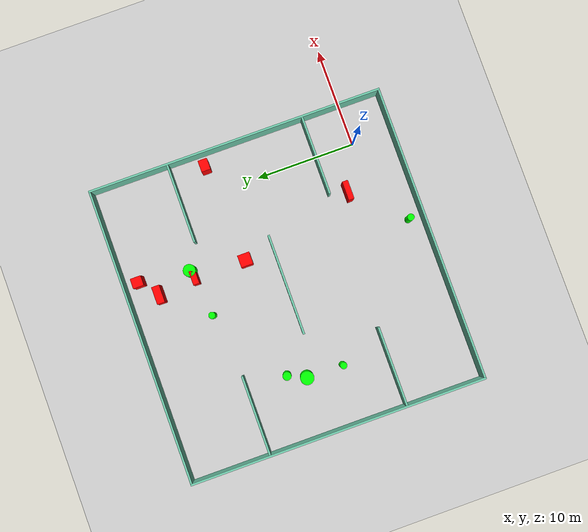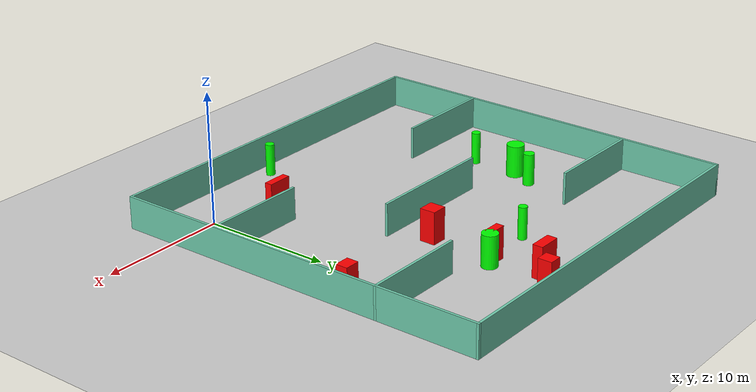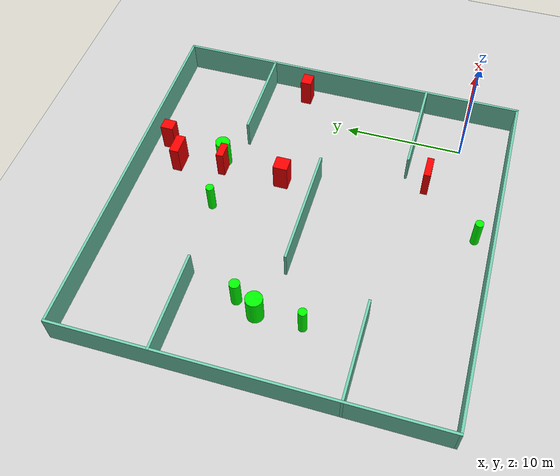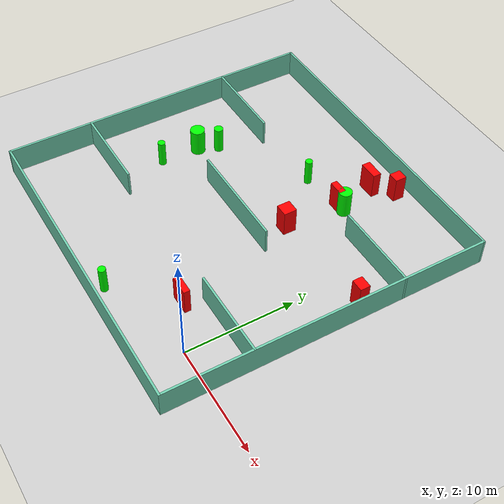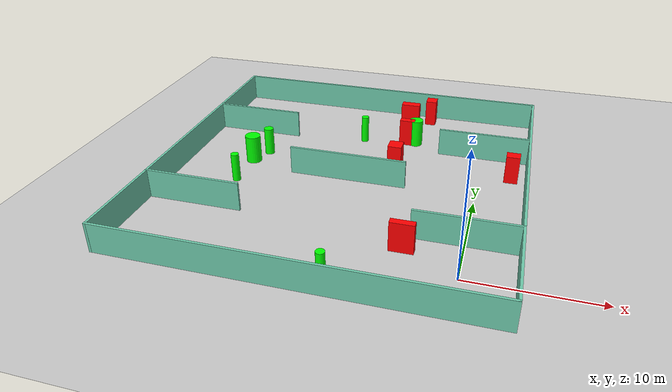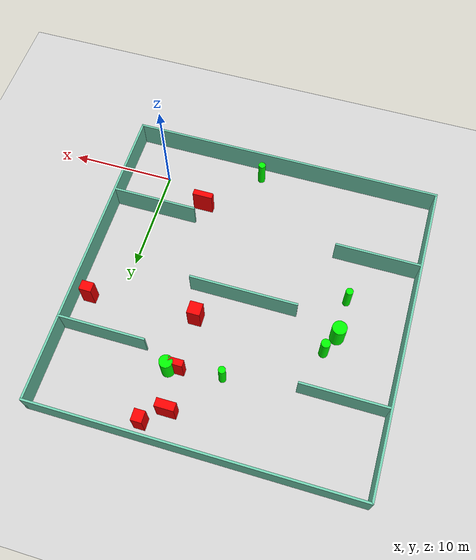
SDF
<sdf version="1.7">
 <world name="default">
  <light name="sun" type="directional">
   <pose>0 0 10 0 -0 0</pose>
   <diffuse>0.8 0.8 0.8 1</diffuse>
   <specular>0.2 0.2 0.2 1</specular>
   <attenuation>
    <range>1000</range>
    <constant>0.9</constant>
    <linear>0.01</linear>
    <quadratic>0.001</quadratic>
   </attenuation>
   <direction>-0.5 0.1 -0.9</direction>
   <spot><inner_angle>0</inner_angle><outer_angle>0</outer_angle><falloff>0</falloff></spot>
  </light>
  <model name="ground_plane">
   <static>1</static>
   <link name="link">
    <collision name="collision">
     <geometry><plane><normal>0 0 1</normal><size>100 100</size></plane></geometry>
     <surface>
      <contact><collide_bitmask>65535</collide_bitmask></contact>
      <friction><ode><mu>100</mu><mu2>50</mu2></ode></friction>
     </surface>
    </collision>
    <visual name="visual">
     <cast_shadows>0</cast_shadows>
     <geometry><plane><normal>0 0 1</normal><size>100 100</size></plane></geometry>
     <material>
      <script><uri>file://media/materials/scripts/gazebo.material</uri><name>Gazebo/Grey</name></script>
     </material>
    </visual>
   </link>
  </model>
  <gravity>0 0 -9.8</gravity>
  <magnetic_field>6e-06 2.3e-05 -4.2e-05</magnetic_field>
  <atmosphere type="adiabatic"/>
  <physics type="ode">
   <max_step_size>0.001</max_step_size>
   <real_time_factor>1</real_time_factor>
   <real_time_update_rate>1000</real_time_update_rate>
  </physics>
  <scene><ambient>0.4 0.4 0.4 1</ambient><background>0.7 0.7 0.7 1</background><shadows>1</shadows></scene>
  <spherical_coordinates>
   <surface_model>EARTH_WGS84</surface_model>
   <latitude_deg>0</latitude_deg>
   <longitude_deg>0</longitude_deg>
   <elevation>0</elevation>
   <heading_deg>0</heading_deg>
  </spherical_coordinates>
  <model name="my_base_walls">
   <link name="Wall_10">
    <collision name="Wall_10_Collision">
     <geometry><box><size>8.2 0.2 2.5</size></box></geometry>
     <pose>0 0 1.25 0 -0 0</pose>
    </collision>
    <visual name="Wall_10_Visual">
     <pose>0 0 1.25 0 -0 0</pose>
     <geometry><box><size>8.2 0.2 2.5</size></box></geometry>
     <material>
      <script><uri>file://media/materials/scripts/gazebo.material</uri><name>Gazebo/Grey</name></script>
      <ambient>0.435294 0.796078 0.67451 1</ambient>
     </material>
     <meta><layer>0</layer></meta>
    </visual>
    <pose>-11 -7 0 0 -0 0</pose>
   </link>
   <link name="Wall_12">
    <collision name="Wall_12_Collision">
     <geometry><box><size>8.2 0.2 2.5</size></box></geometry>
     <pose>0 0 1.25 0 -0 0</pose>
    </collision>
    <visual name="Wall_12_Visual">
     <pose>0 0 1.25 0 -0 0</pose>
     <geometry><box><size>8.2 0.2 2.5</size></box></geometry>
     <material>
      <script><uri>file://media/materials/scripts/gazebo.material</uri><name>Gazebo/Grey</name></script>
      <ambient>0.435294 0.796078 0.67451 1</ambient>
     </material>
     <meta><layer>0</layer></meta>
    </visual>
    <pose>-11 7 0 0 -0 0</pose>
   </link>
   <link name="Wall_14">
    <collision name="Wall_14_Collision">
     <geometry><box><size>8.2 0.2 2.5</size></box></geometry>
     <pose>0 0 1.25 0 -0 0</pose>
    </collision>
    <visual name="Wall_14_Visual">
     <pose>0 0 1.25 0 -0 0</pose>
     <geometry><box><size>8.2 0.2 2.5</size></box></geometry>
     <material>
      <script><uri>file://media/materials/scripts/gazebo.material</uri><name>Gazebo/Grey</name></script>
      <ambient>0.435294 0.796078 0.67451 1</ambient>
     </material>
     <meta><layer>0</layer></meta>
    </visual>
    <pose>11 7 0 0 -0 3.14159</pose>
   </link>
   <link name="Wall_16">
    <collision name="Wall_16_Collision">
     <geometry><box><size>10.2 0.2 2.5</size></box></geometry>
     <pose>0 0 1.25 0 -0 0</pose>
    </collision>
    <visual name="Wall_16_Visual">
     <pose>0 0 1.25 0 -0 0</pose>
     <geometry><box><size>10.2 0.2 2.5</size></box></geometry>
     <material>
      <script><uri>file://media/materials/scripts/gazebo.material</uri><name>Gazebo/Grey</name></script>
      <ambient>0.435294 0.796078 0.67451 1</ambient>
     </material>
     <meta><layer>0</layer></meta>
    </visual>
    <pose>0 0 0 0 -0 3.14159</pose>
   </link>
   <link name="Wall_2">
    <collision name="Wall_2_Collision">
     <geometry><box><size>30.2 0.2 2.5</size></box></geometry>
     <pose>0 0 1.25 0 -0 0</pose>
    </collision>
    <visual name="Wall_2_Visual">
     <pose>0 0 1.25 0 -0 0</pose>
     <geometry><box><size>30.2 0.2 2.5</size></box></geometry>
     <material>
      <script><uri>file://media/materials/scripts/gazebo.material</uri><name>Gazebo/Grey</name></script>
      <ambient>0.435294 0.796078 0.67451 1</ambient>
     </material>
     <meta><layer>0</layer></meta>
    </visual>
    <pose>0 -15 0 0 -0 3.14159</pose>
   </link>
   <link name="Wall_3">
    <collision name="Wall_3_Collision">
     <geometry><box><size>30.2 0.2 2.5</size></box></geometry>
     <pose>0 0 1.25 0 -0 0</pose>
    </collision>
    <visual name="Wall_3_Visual">
     <pose>0 0 1.25 0 -0 0</pose>
     <geometry><box><size>30.2 0.2 2.5</size></box></geometry>
     <material>
      <script><uri>file://media/materials/scripts/gazebo.material</uri><name>Gazebo/Grey</name></script>
      <ambient>0.435294 0.796078 0.67451 1</ambient>
     </material>
     <meta><layer>0</layer></meta>
    </visual>
    <pose>-15 0 0 0 -0 1.5708</pose>
   </link>
   <link name="Wall_4">
    <collision name="Wall_4_Collision">
     <geometry><box><size>30.2 0.2 2.5</size></box></geometry>
     <pose>0 0 1.25 0 -0 0</pose>
    </collision>
    <visual name="Wall_4_Visual">
     <pose>0 0 1.25 0 -0 0</pose>
     <geometry><box><size>30.2 0.2 2.5</size></box></geometry>
     <material>
      <script><uri>file://media/materials/scripts/gazebo.material</uri><name>Gazebo/Grey</name></script>
      <ambient>0.435294 0.796078 0.67451 1</ambient>
     </material>
     <meta><layer>0</layer></meta>
    </visual>
    <pose>0 15 0 0 -0 0</pose>
   </link>
   <link name="Wall_6">
    <collision name="Wall_6_Collision">
     <geometry><box><size>30.2 0.2 2.5</size></box></geometry>
     <pose>0 0 1.25 0 -0 0</pose>
    </collision>
    <visual name="Wall_6_Visual">
     <pose>0 0 1.25 0 -0 0</pose>
     <geometry><box><size>30.2 0.2 2.5</size></box></geometry>
     <material>
      <script><uri>file://media/materials/scripts/gazebo.material</uri><name>Gazebo/Grey</name></script>
      <ambient>0.435294 0.796078 0.67451 1</ambient>
     </material>
     <meta><layer>0</layer></meta>
    </visual>
    <pose>15 0 0 0 -0 1.5708</pose>
   </link>
   <link name="Wall_8">
    <collision name="Wall_8_Collision">
     <geometry><box><size>8.2 0.2 2.5</size></box></geometry>
     <pose>0 0 1.25 0 -0 0</pose>
    </collision>
    <visual name="Wall_8_Visual">
     <pose>0 0 1.25 0 -0 0</pose>
     <geometry><box><size>8.2 0.2 2.5</size></box></geometry>
     <material>
      <script><uri>file://media/materials/scripts/gazebo.material</uri><name>Gazebo/Grey</name></script>
      <ambient>0.435294 0.796078 0.67451 1</ambient>
     </material>
     <meta><layer>0</layer></meta>
    </visual>
    <pose>11 -7 0 0 -0 3.14159</pose>
   </link>
   <static>1</static>
   <pose>-11 11 0 0 -0 0</pose>
  </model>
  <model name="cylinder1">
   <static>1</static>
   <link name="link">
    <inertial>
     <mass>1</mass>
     <inertia><ixx>0.5</ixx><ixy>0</ixy><ixz>0</ixz><iyy>0.5</iyy><iyz>0</iyz><izz>1</izz></inertia>
    </inertial>
    <collision name="collision">
     <geometry><cylinder><radius>0.3442016754526576</radius><length>2.5</length></cylinder></geometry>
    </collision>
    <visual name="visual">
     <geometry><cylinder><radius>0.3442016754526576</radius><length>2.5</length></cylinder></geometry>
     <material>
      <ambient>0 1 0 1</ambient>
      <diffuse>0 1 0 1</diffuse>
      <specular>0.1 0.1 0.1 1</specular>
      <emissive>0 0 0 0</emissive>
     </material>
    </visual>
   </link>
   <pose>-8.940735287238422 -2.6412808779185357 1.25 0 0 0</pose>
  </model>
  <model name="cylinder2">
   <static>1</static>
   <link name="link">
    <inertial>
     <mass>1</mass>
     <inertia><ixx>0.5</ixx><ixy>0</ixy><ixz>0</ixz><iyy>0.5</iyy><iyz>0</iyz><izz>1</izz></inertia>
    </inertial>
    <collision name="collision">
     <geometry><cylinder><radius>0.6764035328828959</radius><length>2.5</length></cylinder></geometry>
    </collision>
    <visual name="visual">
     <geometry><cylinder><radius>0.6764035328828959</radius><length>2.5</length></cylinder></geometry>
     <material>
      <ambient>0 1 0 1</ambient>
      <diffuse>0 1 0 1</diffuse>
      <specular>0.1 0.1 0.1 1</specular>
      <emissive>0 0 0 0</emissive>
     </material>
    </visual>
   </link>
   <pose>-20.172533585172253 12.137327610738279 1.25 0 0 0</pose>
  </model>
  <model name="cylinder3">
   <static>1</static>
   <link name="link">
    <inertial>
     <mass>1</mass>
     <inertia><ixx>0.5</ixx><ixy>0</ixy><ixz>0</ixz><iyy>0.5</iyy><iyz>0</iyz><izz>1</izz></inertia>
    </inertial>
    <collision name="collision">
     <geometry><cylinder><radius>0.343352230711526</radius><length>2.5</length></cylinder></geometry>
    </collision>
    <visual name="visual">
     <geometry><cylinder><radius>0.343352230711526</radius><length>2.5</length></cylinder></geometry>
     <material>
      <ambient>0 1 0 1</ambient>
      <diffuse>0 1 0 1</diffuse>
      <specular>0.1 0.1 0.1 1</specular>
      <emissive>0 0 0 0</emissive>
     </material>
    </visual>
   </link>
   <pose>-20.229002056630037 8.427004345867546 1.25 0 0 0</pose>
  </model>
  <model name="cylinder4">
   <static>1</static>
   <link name="link">
    <inertial>
     <mass>1</mass>
     <inertia><ixx>0.5</ixx><ixy>0</ixy><ixz>0</ixz><iyy>0.5</iyy><iyz>0</iyz><izz>1</izz></inertia>
    </inertial>
    <collision name="collision">
     <geometry><cylinder><radius>0.6152216198452569</radius><length>2.5</length></cylinder></geometry>
    </collision>
    <visual name="visual">
     <geometry><cylinder><radius>0.6152216198452569</radius><length>2.5</length></cylinder></geometry>
     <material>
      <ambient>0 1 0 1</ambient>
      <diffuse>0 1 0 1</diffuse>
      <specular>0.1 0.1 0.1 1</specular>
      <emissive>0 0 0 0</emissive>
     </material>
    </visual>
   </link>
   <pose>-6.534380094743813 19.397748691242885 1.25 0 0 0</pose>
  </model>
  <model name="cylinder5">
   <static>1</static>
   <link name="link">
    <inertial>
     <mass>1</mass>
     <inertia><ixx>0.5</ixx><ixy>0</ixy><ixz>0</ixz><iyy>0.5</iyy><iyz>0</iyz><izz>1</izz></inertia>
    </inertial>
    <collision name="collision">
     <geometry><cylinder><radius>0.42549134514553527</radius><length>2.5</length></cylinder></geometry>
    </collision>
    <visual name="visual">
     <geometry><cylinder><radius>0.42549134514553527</radius><length>2.5</length></cylinder></geometry>
     <material>
      <ambient>0 1 0 1</ambient>
      <diffuse>0 1 0 1</diffuse>
      <specular>0.1 0.1 0.1 1</specular>
      <emissive>0 0 0 0</emissive>
     </material>
    </visual>
   </link>
   <pose>-19.34809649529736 13.911654028994707 1.25 0 0 0</pose>
  </model>
  <model name="cylinder6">
   <static>1</static>
   <link name="link">
    <inertial>
     <mass>1</mass>
     <inertia><ixx>0.5</ixx><ixy>0</ixy><ixz>0</ixz><iyy>0.5</iyy><iyz>0</iyz><izz>1</izz></inertia>
    </inertial>
    <collision name="collision">
     <geometry><cylinder><radius>0.3364665818334219</radius><length>2.5</length></cylinder></geometry>
    </collision>
    <visual name="visual">
     <geometry><cylinder><radius>0.3364665818334219</radius><length>2.5</length></cylinder></geometry>
     <material>
      <ambient>0 1 0 1</ambient>
      <diffuse>0 1 0 1</diffuse>
      <specular>0.1 0.1 0.1 1</specular>
      <emissive>0 0 0 0</emissive>
     </material>
    </visual>
   </link>
   <pose>-11.387207896571557 18.77426795867931 1.25 0 0 0</pose>
  </model>
  <model name="box1">
   <static>1</static>
   <link name="link">
    <inertial>
     <mass>1</mass>
     <inertia><ixx>0.083</ixx><ixy>0</ixy><ixz>0</ixz><iyy>0.083</iyy><iyz>0</iyz><izz>0.083</izz></inertia>
    </inertial>
    <collision name="collision">
     <geometry><box><size>1.9105233314175474 0.5719339427049139 2.5</size></box></geometry>
    </collision>
    <visual name="visual">
     <geometry><box><size>1.9105233314175474 0.5719339427049139 2.5</size></box></geometry>
     <material>
      <ambient>1 0 0 1</ambient>
      <diffuse>1 0 0 1</diffuse>
      <specular>0.1 0.1 0.1 1</specular>
      <emissive>0 0 0 0</emissive>
     </material>
    </visual>
    <sensor name="my_contact" type="contact">
     <contact><collision>box_collision</collision><topic>__default_topic__</topic></contact>
    </sensor>
   </link>
   <pose>-4.3791560515311225 2.195390414974967 1.25 0 0 0</pose>
  </model>
  <model name="box2">
   <static>1</static>
   <link name="link">
    <inertial>
     <mass>1</mass>
     <inertia><ixx>0.083</ixx><ixy>0</ixy><ixz>0</ixz><iyy>0.083</iyy><iyz>0</iyz><izz>0.083</izz></inertia>
    </inertial>
    <collision name="collision">
     <geometry><box><size>1.3897036571049552 0.6156006007904515 2.5</size></box></geometry>
    </collision>
    <visual name="visual">
     <geometry><box><size>1.3897036571049552 0.6156006007904515 2.5</size></box></geometry>
     <material>
      <ambient>1 0 0 1</ambient>
      <diffuse>1 0 0 1</diffuse>
      <specular>0.1 0.1 0.1 1</specular>
      <emissive>0 0 0 0</emissive>
     </material>
    </visual>
    <sensor name="my_contact" type="contact">
     <contact><collision>box_collision</collision><topic>__default_topic__</topic></contact>
    </sensor>
   </link>
   <pose>-7.3309034242583415 19.181944174725768 1.25 0 0 0</pose>
  </model>
  <model name="box3">
   <static>1</static>
   <link name="link">
    <inertial>
     <mass>1</mass>
     <inertia><ixx>0.083</ixx><ixy>0</ixy><ixz>0</ixz><iyy>0.083</iyy><iyz>0</iyz><izz>0.083</izz></inertia>
    </inertial>
    <collision name="collision">
     <geometry><box><size>1.2193911203332348 1.2148674984945944 2.5</size></box></geometry>
    </collision>
    <visual name="visual">
     <geometry><box><size>1.2193911203332348 1.2148674984945944 2.5</size></box></geometry>
     <material>
      <ambient>1 0 0 1</ambient>
      <diffuse>1 0 0 1</diffuse>
      <specular>0.1 0.1 0.1 1</specular>
      <emissive>0 0 0 0</emissive>
     </material>
    </visual>
    <sensor name="my_contact" type="contact">
     <contact><collision>box_collision</collision><topic>__default_topic__</topic></contact>
    </sensor>
   </link>
   <pose>-7.382781123569767 13.933612545877729 1.25 0 0 0</pose>
  </model>
  <model name="box4">
   <static>1</static>
   <link name="link">
    <inertial>
     <mass>1</mass>
     <inertia><ixx>0.083</ixx><ixy>0</ixy><ixz>0</ixz><iyy>0.083</iyy><iyz>0</iyz><izz>0.083</izz></inertia>
    </inertial>
    <collision name="collision">
     <geometry><box><size>1.765294005997813 0.7847394809813724 2.5</size></box></geometry>
    </collision>
    <visual name="visual">
     <geometry><box><size>1.765294005997813 0.7847394809813724 2.5</size></box></geometry>
     <material>
      <ambient>1 0 0 1</ambient>
      <diffuse>1 0 0 1</diffuse>
      <specular>0.1 0.1 0.1 1</specular>
      <emissive>0 0 0 0</emissive>
     </material>
    </visual>
    <sensor name="my_contact" type="contact">
     <contact><collision>box_collision</collision><topic>__default_topic__</topic></contact>
    </sensor>
   </link>
   <pose>-7.732193331611905 23.01485112138022 1.25 0 0 0</pose>
  </model>
  <model name="box5">
   <static>1</static>
   <link name="link">
    <inertial>
     <mass>1</mass>
     <inertia><ixx>0.083</ixx><ixy>0</ixy><ixz>0</ixz><iyy>0.083</iyy><iyz>0</iyz><izz>0.083</izz></inertia>
    </inertial>
    <collision name="collision">
     <geometry><box><size>0.9966133770246524 1.0809782927366869 2.5</size></box></geometry>
    </collision>
    <visual name="visual">
     <geometry><box><size>0.9966133770246524 1.0809782927366869 2.5</size></box></geometry>
     <material>
      <ambient>1 0 0 1</ambient>
      <diffuse>1 0 0 1</diffuse>
      <specular>0.1 0.1 0.1 1</specular>
      <emissive>0 0 0 0</emissive>
     </material>
    </visual>
    <sensor name="my_contact" type="contact">
     <contact><collision>box_collision</collision><topic>__default_topic__</topic></contact>
    </sensor>
   </link>
   <pose>-5.8850732100106935 24.549565029939764 1.25 0 0 0</pose>
  </model>
  <model name="box6">
   <static>1</static>
   <link name="link">
    <inertial>
     <mass>1</mass>
     <inertia><ixx>0.083</ixx><ixy>0</ixy><ixz>0</ixz><iyy>0.083</iyy><iyz>0</iyz><izz>0.083</izz></inertia>
    </inertial>
    <collision name="collision">
     <geometry><box><size>1.154944710381157 0.9296600530657003 2.5</size></box></geometry>
    </collision>
    <visual name="visual">
     <geometry><box><size>1.154944710381157 0.9296600530657003 2.5</size></box></geometry>
     <material>
      <ambient>1 0 0 1</ambient>
      <diffuse>1 0 0 1</diffuse>
      <specular>0.1 0.1 0.1 1</specular>
      <emissive>0 0 0 0</emissive>
     </material>
    </visual>
    <sensor name="my_contact" type="contact">
     <contact><collision>box_collision</collision><topic>__default_topic__</topic></contact>
    </sensor>
   </link>
   <pose>2.696741100991627 14.597796317563915 1.25 0 0 0</pose>
  </model>
 </world>
</sdf>
